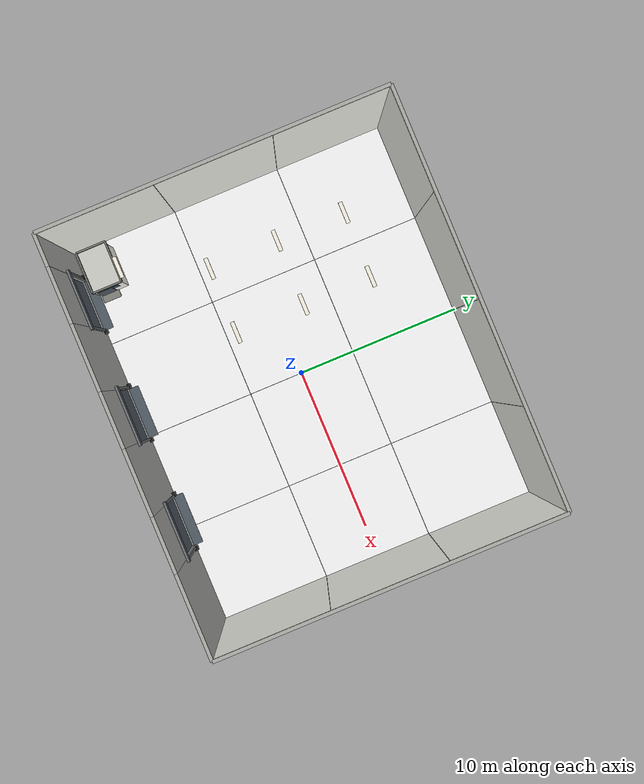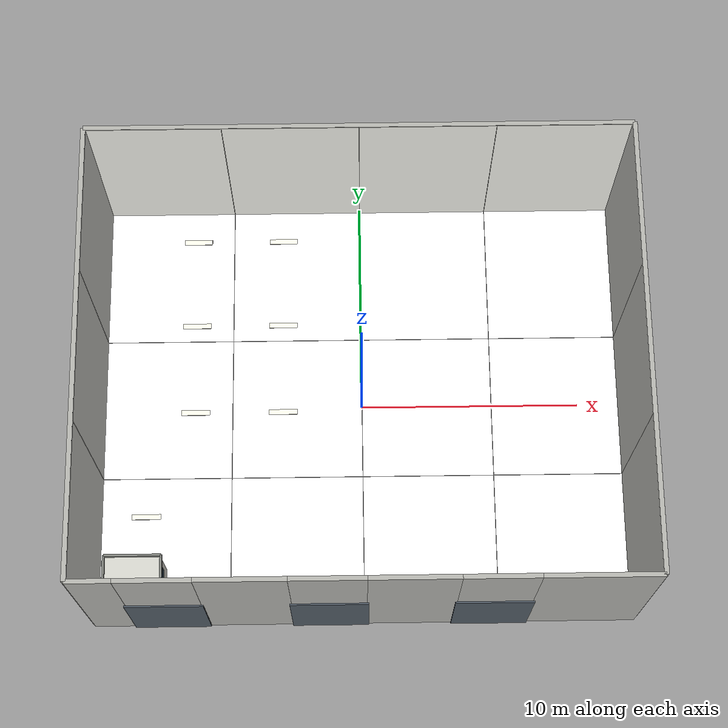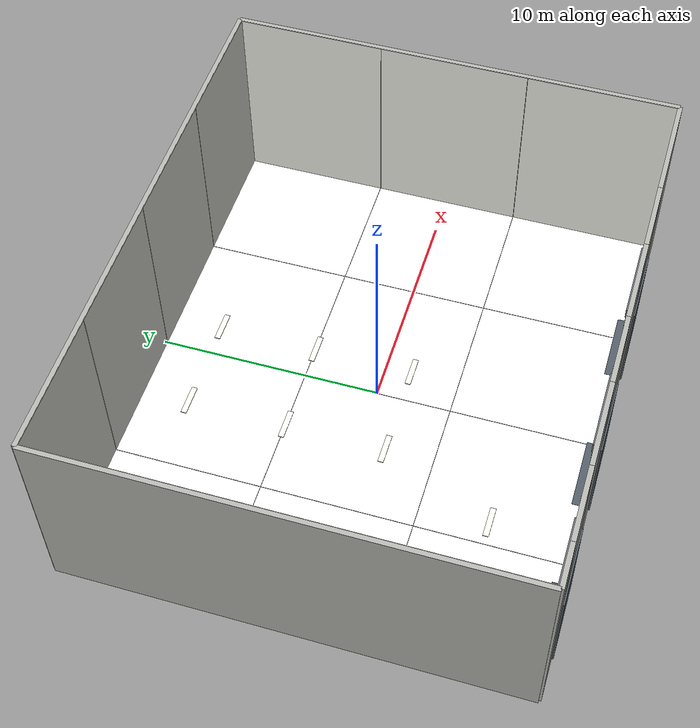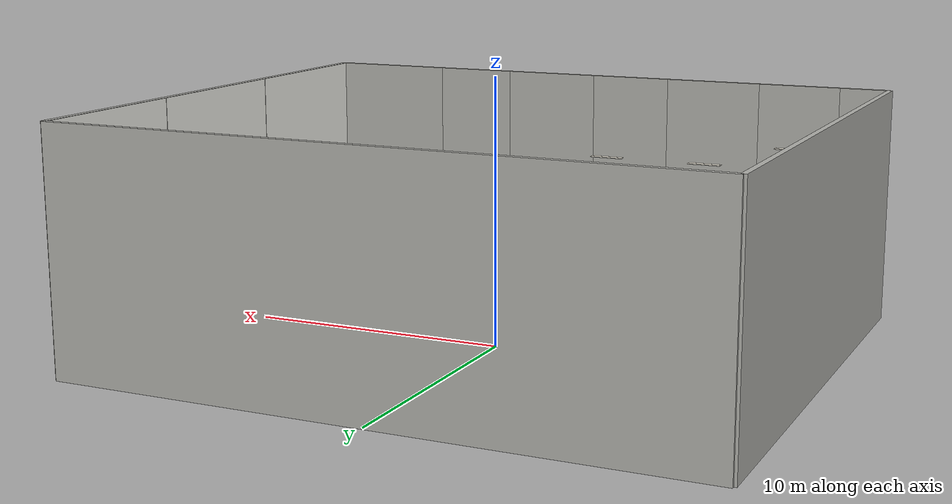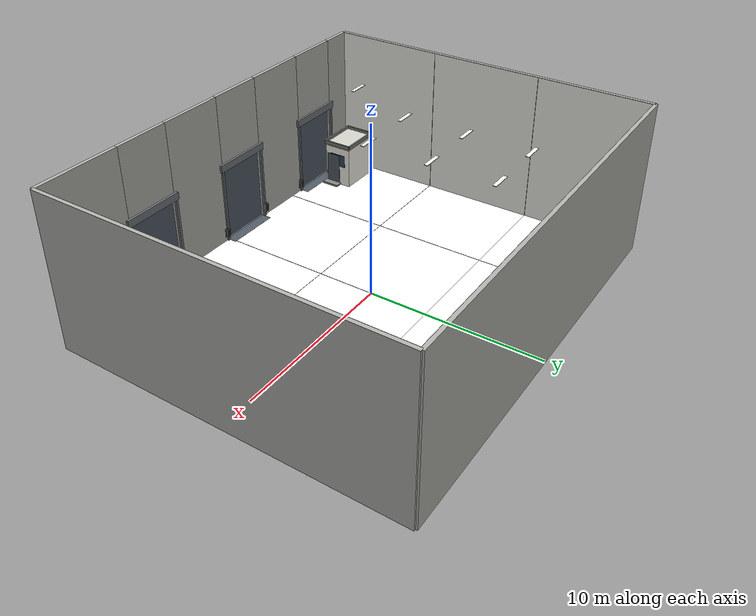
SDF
<sdf version="1.8">
 <world name="warehouse_v2">
  <model name="lamp_glow_0">
   <static>true</static>
   <pose>-7.05 -2.40 6.97 0 0 0</pose>
   <link name="link">
    <visual name="visual">
     <geometry><box><size>1.20 0.22 0.03</size></box></geometry>
     <material>
      <ambient>1 0.98 0.92 1</ambient>
      <diffuse>1 0.98 0.92 1</diffuse>
      <specular>0.2 0.2 0.2 1</specular>
      <emissive>1 0.97 0.90 1</emissive>
     </material>
     <cast_shadows>false</cast_shadows>
    </visual>
   </link>
  </model>
  <model name="lamp_glow_1">
   <static>true</static>
   <pose>-7.05 1.50 6.97 0 0 0</pose>
   <link name="link">
    <visual name="visual">
     <geometry><box><size>1.20 0.22 0.03</size></box></geometry>
     <material>
      <ambient>1 0.98 0.92 1</ambient>
      <diffuse>1 0.98 0.92 1</diffuse>
      <specular>0.2 0.2 0.2 1</specular>
      <emissive>1 0.97 0.90 1</emissive>
     </material>
     <cast_shadows>false</cast_shadows>
    </visual>
   </link>
  </model>
  <model name="lamp_glow_2">
   <static>true</static>
   <pose>-7.05 5.40 6.97 0 0 0</pose>
   <link name="link">
    <visual name="visual">
     <geometry><box><size>1.20 0.22 0.03</size></box></geometry>
     <material>
      <ambient>1 0.98 0.92 1</ambient>
      <diffuse>1 0.98 0.92 1</diffuse>
      <specular>0.2 0.2 0.2 1</specular>
      <emissive>1 0.97 0.90 1</emissive>
     </material>
     <cast_shadows>false</cast_shadows>
    </visual>
   </link>
  </model>
  <model name="lamp_glow_3">
   <static>true</static>
   <pose>-3.35 -2.40 6.97 0 0 0</pose>
   <link name="link">
    <visual name="visual">
     <geometry><box><size>1.20 0.22 0.03</size></box></geometry>
     <material>
      <ambient>1 0.98 0.92 1</ambient>
      <diffuse>1 0.98 0.92 1</diffuse>
      <specular>0.2 0.2 0.2 1</specular>
      <emissive>1 0.97 0.90 1</emissive>
     </material>
     <cast_shadows>false</cast_shadows>
    </visual>
   </link>
  </model>
  <model name="lamp_glow_4">
   <static>true</static>
   <pose>-3.35 1.50 6.97 0 0 0</pose>
   <link name="link">
    <visual name="visual">
     <geometry><box><size>1.20 0.22 0.03</size></box></geometry>
     <material>
      <ambient>1 0.98 0.92 1</ambient>
      <diffuse>1 0.98 0.92 1</diffuse>
      <specular>0.2 0.2 0.2 1</specular>
      <emissive>1 0.97 0.90 1</emissive>
     </material>
     <cast_shadows>false</cast_shadows>
    </visual>
   </link>
  </model>
  <model name="lamp_glow_5">
   <static>true</static>
   <pose>-3.35 5.40 6.97 0 0 0</pose>
   <link name="link">
    <visual name="visual">
     <geometry><box><size>1.20 0.22 0.03</size></box></geometry>
     <material>
      <ambient>1 0.98 0.92 1</ambient>
      <diffuse>1 0.98 0.92 1</diffuse>
      <specular>0.2 0.2 0.2 1</specular>
      <emissive>1 0.97 0.90 1</emissive>
     </material>
     <cast_shadows>false</cast_shadows>
    </visual>
   </link>
  </model>
  <model name="lamp_glow_14">
   <static>true</static>
   <pose>-9.00 -6.90 6.97 0 0 0</pose>
   <link name="link">
    <visual name="visual">
     <geometry><box><size>1.20 0.22 0.03</size></box></geometry>
     <material>
      <ambient>1 0.98 0.92 1</ambient>
      <diffuse>1 0.98 0.92 1</diffuse>
      <specular>0.2 0.2 0.2 1</specular>
      <emissive>1 0.97 0.90 1</emissive>
     </material>
     <cast_shadows>false</cast_shadows>
    </visual>
   </link>
  </model>
  <model name="ground_plane">
   <static>true</static>
   <link name="link">
    <collision name="collision">
     <geometry><plane><normal>0 0 1</normal><size>24.5 20.5</size></plane></geometry>
    </collision>
   </link>
  </model>
  <model name="warehouse_v2_floor">
   <static>true</static>
   <link name="floor_bay_0_0">
    <pose>-9.000 -6.667 0.005 0 0 0.0000</pose>
    <visual name="visual">
     <geometry><box><size>5.985 6.652 0.010</size></box></geometry>
     <material>
      <ambient>1 1 1 1</ambient>
      <diffuse>1 1 1 1</diffuse>
      <specular>0.08 0.08 0.08 1</specular>
      <pbr>
       <metal>
        <albedo_map>model://warehouse_pbr/materials/textures/concrete_albedo.png</albedo_map>
        <normal_map>model://warehouse_pbr/materials/textures/concrete_normal.png</normal_map>
        <roughness_map>model://warehouse_pbr/materials/textures/concrete_roughness.png</roughness_map>
        <metalness>0.0</metalness>
       </metal>
      </pbr>
     </material>
    </visual>
   </link>
   <link name="floor_bay_0_1">
    <pose>-9.000 0.000 0.005 0 0 0.0000</pose>
    <visual name="visual">
     <geometry><box><size>5.985 6.652 0.010</size></box></geometry>
     <material>
      <ambient>1 1 1 1</ambient>
      <diffuse>1 1 1 1</diffuse>
      <specular>0.08 0.08 0.08 1</specular>
      <pbr>
       <metal>
        <albedo_map>model://warehouse_pbr/materials/textures/concrete_albedo.png</albedo_map>
        <normal_map>model://warehouse_pbr/materials/textures/concrete_normal.png</normal_map>
        <roughness_map>model://warehouse_pbr/materials/textures/concrete_roughness.png</roughness_map>
        <metalness>0.0</metalness>
       </metal>
      </pbr>
     </material>
    </visual>
   </link>
   <link name="floor_bay_0_2">
    <pose>-9.000 6.667 0.005 0 0 0.0000</pose>
    <visual name="visual">
     <geometry><box><size>5.985 6.652 0.010</size></box></geometry>
     <material>
      <ambient>1 1 1 1</ambient>
      <diffuse>1 1 1 1</diffuse>
      <specular>0.08 0.08 0.08 1</specular>
      <pbr>
       <metal>
        <albedo_map>model://warehouse_pbr/materials/textures/concrete_albedo.png</albedo_map>
        <normal_map>model://warehouse_pbr/materials/textures/concrete_normal.png</normal_map>
        <roughness_map>model://warehouse_pbr/materials/textures/concrete_roughness.png</roughness_map>
        <metalness>0.0</metalness>
       </metal>
      </pbr>
     </material>
    </visual>
   </link>
   <link name="floor_bay_1_0">
    <pose>-3.000 -6.667 0.005 0 0 0.0000</pose>
    <visual name="visual">
     <geometry><box><size>5.985 6.652 0.010</size></box></geometry>
     <material>
      <ambient>1 1 1 1</ambient>
      <diffuse>1 1 1 1</diffuse>
      <specular>0.08 0.08 0.08 1</specular>
      <pbr>
       <metal>
        <albedo_map>model://warehouse_pbr/materials/textures/concrete_albedo.png</albedo_map>
        <normal_map>model://warehouse_pbr/materials/textures/concrete_normal.png</normal_map>
        <roughness_map>model://warehouse_pbr/materials/textures/concrete_roughness.png</roughness_map>
        <metalness>0.0</metalness>
       </metal>
      </pbr>
     </material>
    </visual>
   </link>
   <link name="floor_bay_1_1">
    <pose>-3.000 0.000 0.005 0 0 0.0000</pose>
    <visual name="visual">
     <geometry><box><size>5.985 6.652 0.010</size></box></geometry>
     <material>
      <ambient>1 1 1 1</ambient>
      <diffuse>1 1 1 1</diffuse>
      <specular>0.08 0.08 0.08 1</specular>
      <pbr>
       <metal>
        <albedo_map>model://warehouse_pbr/materials/textures/concrete_albedo.png</albedo_map>
        <normal_map>model://warehouse_pbr/materials/textures/concrete_normal.png</normal_map>
        <roughness_map>model://warehouse_pbr/materials/textures/concrete_roughness.png</roughness_map>
        <metalness>0.0</metalness>
       </metal>
      </pbr>
     </material>
    </visual>
   </link>
   <link name="floor_bay_1_2">
    <pose>-3.000 6.667 0.005 0 0 0.0000</pose>
    <visual name="visual">
     <geometry><box><size>5.985 6.652 0.010</size></box></geometry>
     <material>
      <ambient>1 1 1 1</ambient>
      <diffuse>1 1 1 1</diffuse>
      <specular>0.08 0.08 0.08 1</specular>
      <pbr>
       <metal>
        <albedo_map>model://warehouse_pbr/materials/textures/concrete_albedo.png</albedo_map>
        <normal_map>model://warehouse_pbr/materials/textures/concrete_normal.png</normal_map>
        <roughness_map>model://warehouse_pbr/materials/textures/concrete_roughness.png</roughness_map>
        <metalness>0.0</metalness>
       </metal>
      </pbr>
     </material>
    </visual>
   </link>
   <link name="floor_bay_2_0">
    <pose>3.000 -6.667 0.005 0 0 0.0000</pose>
    <visual name="visual">
     <geometry><box><size>5.985 6.652 0.010</size></box></geometry>
     <material>
      <ambient>1 1 1 1</ambient>
      <diffuse>1 1 1 1</diffuse>
      <specular>0.08 0.08 0.08 1</specular>
      <pbr>
       <metal>
        <albedo_map>model://warehouse_pbr/materials/textures/concrete_albedo.png</albedo_map>
        <normal_map>model://warehouse_pbr/materials/textures/concrete_normal.png</normal_map>
        <roughness_map>model://warehouse_pbr/materials/textures/concrete_roughness.png</roughness_map>
        <metalness>0.0</metalness>
       </metal>
      </pbr>
     </material>
    </visual>
   </link>
   <link name="floor_bay_2_1">
    <pose>3.000 0.000 0.005 0 0 0.0000</pose>
    <visual name="visual">
     <geometry><box><size>5.985 6.652 0.010</size></box></geometry>
     <material>
      <ambient>1 1 1 1</ambient>
      <diffuse>1 1 1 1</diffuse>
      <specular>0.08 0.08 0.08 1</specular>
      <pbr>
       <metal>
        <albedo_map>model://warehouse_pbr/materials/textures/concrete_albedo.png</albedo_map>
        <normal_map>model://warehouse_pbr/materials/textures/concrete_normal.png</normal_map>
        <roughness_map>model://warehouse_pbr/materials/textures/concrete_roughness.png</roughness_map>
        <metalness>0.0</metalness>
       </metal>
      </pbr>
     </material>
    </visual>
   </link>
   <link name="floor_bay_2_2">
    <pose>3.000 6.667 0.005 0 0 0.0000</pose>
    <visual name="visual">
     <geometry><box><size>5.985 6.652 0.010</size></box></geometry>
     <material>
      <ambient>1 1 1 1</ambient>
      <diffuse>1 1 1 1</diffuse>
      <specular>0.08 0.08 0.08 1</specular>
      <pbr>
       <metal>
        <albedo_map>model://warehouse_pbr/materials/textures/concrete_albedo.png</albedo_map>
        <normal_map>model://warehouse_pbr/materials/textures/concrete_normal.png</normal_map>
        <roughness_map>model://warehouse_pbr/materials/textures/concrete_roughness.png</roughness_map>
        <metalness>0.0</metalness>
       </metal>
      </pbr>
     </material>
    </visual>
   </link>
   <link name="floor_bay_3_0">
    <pose>9.000 -6.667 0.005 0 0 0.0000</pose>
    <visual name="visual">
     <geometry><box><size>5.985 6.652 0.010</size></box></geometry>
     <material>
      <ambient>1 1 1 1</ambient>
      <diffuse>1 1 1 1</diffuse>
      <specular>0.08 0.08 0.08 1</specular>
      <pbr>
       <metal>
        <albedo_map>model://warehouse_pbr/materials/textures/concrete_albedo.png</albedo_map>
        <normal_map>model://warehouse_pbr/materials/textures/concrete_normal.png</normal_map>
        <roughness_map>model://warehouse_pbr/materials/textures/concrete_roughness.png</roughness_map>
        <metalness>0.0</metalness>
       </metal>
      </pbr>
     </material>
    </visual>
   </link>
   <link name="floor_bay_3_1">
    <pose>9.000 0.000 0.005 0 0 0.0000</pose>
    <visual name="visual">
     <geometry><box><size>5.985 6.652 0.010</size></box></geometry>
     <material>
      <ambient>1 1 1 1</ambient>
      <diffuse>1 1 1 1</diffuse>
      <specular>0.08 0.08 0.08 1</specular>
      <pbr>
       <metal>
        <albedo_map>model://warehouse_pbr/materials/textures/concrete_albedo.png</albedo_map>
        <normal_map>model://warehouse_pbr/materials/textures/concrete_normal.png</normal_map>
        <roughness_map>model://warehouse_pbr/materials/textures/concrete_roughness.png</roughness_map>
        <metalness>0.0</metalness>
       </metal>
      </pbr>
     </material>
    </visual>
   </link>
   <link name="floor_bay_3_2">
    <pose>9.000 6.667 0.005 0 0 0.0000</pose>
    <visual name="visual">
     <geometry><box><size>5.985 6.652 0.010</size></box></geometry>
     <material>
      <ambient>1 1 1 1</ambient>
      <diffuse>1 1 1 1</diffuse>
      <specular>0.08 0.08 0.08 1</specular>
      <pbr>
       <metal>
        <albedo_map>model://warehouse_pbr/materials/textures/concrete_albedo.png</albedo_map>
        <normal_map>model://warehouse_pbr/materials/textures/concrete_normal.png</normal_map>
        <roughness_map>model://warehouse_pbr/materials/textures/concrete_roughness.png</roughness_map>
        <metalness>0.0</metalness>
       </metal>
      </pbr>
     </material>
    </visual>
   </link>
  </model>
  <model name="warehouse_v2_wall_lining">
   <static>true</static>
   <link name="panel_n_0">
    <pose>-9.000 9.890 4.500 0 0 0.0000</pose>
    <visual name="visual">
     <geometry><box><size>5.980 0.020 8.980</size></box></geometry>
     <material>
      <ambient>0.97 0.97 0.94 1</ambient>
      <diffuse>0.97 0.97 0.94 1</diffuse>
      <specular>0.08 0.08 0.08 1</specular>
      <pbr>
       <metal>
        <albedo_map>model://warehouse_pbr/materials/textures/concrete_albedo.png</albedo_map>
        <normal_map>model://warehouse_pbr/materials/textures/concrete_normal.png</normal_map>
        <roughness_map>model://warehouse_pbr/materials/textures/concrete_roughness.png</roughness_map>
        <metalness>0.0</metalness>
       </metal>
      </pbr>
     </material>
    </visual>
   </link>
   <link name="panel_n_1">
    <pose>-3.000 9.890 4.500 0 0 0.0000</pose>
    <visual name="visual">
     <geometry><box><size>5.980 0.020 8.980</size></box></geometry>
     <material>
      <ambient>0.97 0.97 0.94 1</ambient>
      <diffuse>0.97 0.97 0.94 1</diffuse>
      <specular>0.08 0.08 0.08 1</specular>
      <pbr>
       <metal>
        <albedo_map>model://warehouse_pbr/materials/textures/concrete_albedo.png</albedo_map>
        <normal_map>model://warehouse_pbr/materials/textures/concrete_normal.png</normal_map>
        <roughness_map>model://warehouse_pbr/materials/textures/concrete_roughness.png</roughness_map>
        <metalness>0.0</metalness>
       </metal>
      </pbr>
     </material>
    </visual>
   </link>
   <link name="panel_n_2">
    <pose>3.000 9.890 4.500 0 0 0.0000</pose>
    <visual name="visual">
     <geometry><box><size>5.980 0.020 8.980</size></box></geometry>
     <material>
      <ambient>0.97 0.97 0.94 1</ambient>
      <diffuse>0.97 0.97 0.94 1</diffuse>
      <specular>0.08 0.08 0.08 1</specular>
      <pbr>
       <metal>
        <albedo_map>model://warehouse_pbr/materials/textures/concrete_albedo.png</albedo_map>
        <normal_map>model://warehouse_pbr/materials/textures/concrete_normal.png</normal_map>
        <roughness_map>model://warehouse_pbr/materials/textures/concrete_roughness.png</roughness_map>
        <metalness>0.0</metalness>
       </metal>
      </pbr>
     </material>
    </visual>
   </link>
   <link name="panel_n_3">
    <pose>9.000 9.890 4.500 0 0 0.0000</pose>
    <visual name="visual">
     <geometry><box><size>5.980 0.020 8.980</size></box></geometry>
     <material>
      <ambient>0.97 0.97 0.94 1</ambient>
      <diffuse>0.97 0.97 0.94 1</diffuse>
      <specular>0.08 0.08 0.08 1</specular>
      <pbr>
       <metal>
        <albedo_map>model://warehouse_pbr/materials/textures/concrete_albedo.png</albedo_map>
        <normal_map>model://warehouse_pbr/materials/textures/concrete_normal.png</normal_map>
        <roughness_map>model://warehouse_pbr/materials/textures/concrete_roughness.png</roughness_map>
        <metalness>0.0</metalness>
       </metal>
      </pbr>
     </material>
    </visual>
   </link>
   <link name="panel_w_0">
    <pose>-11.890 -6.667 4.500 0 0 0.0000</pose>
    <visual name="visual">
     <geometry><box><size>0.020 6.647 8.980</size></box></geometry>
     <material>
      <ambient>0.97 0.97 0.94 1</ambient>
      <diffuse>0.97 0.97 0.94 1</diffuse>
      <specular>0.08 0.08 0.08 1</specular>
      <pbr>
       <metal>
        <albedo_map>model://warehouse_pbr/materials/textures/concrete_albedo.png</albedo_map>
        <normal_map>model://warehouse_pbr/materials/textures/concrete_normal.png</normal_map>
        <roughness_map>model://warehouse_pbr/materials/textures/concrete_roughness.png</roughness_map>
        <metalness>0.0</metalness>
       </metal>
      </pbr>
     </material>
    </visual>
   </link>
   <link name="panel_e_0">
    <pose>11.890 -6.667 4.500 0 0 0.0000</pose>
    <visual name="visual">
     <geometry><box><size>0.020 6.647 8.980</size></box></geometry>
     <material>
      <ambient>0.97 0.97 0.94 1</ambient>
      <diffuse>0.97 0.97 0.94 1</diffuse>
      <specular>0.08 0.08 0.08 1</specular>
      <pbr>
       <metal>
        <albedo_map>model://warehouse_pbr/materials/textures/concrete_albedo.png</albedo_map>
        <normal_map>model://warehouse_pbr/materials/textures/concrete_normal.png</normal_map>
        <roughness_map>model://warehouse_pbr/materials/textures/concrete_roughness.png</roughness_map>
        <metalness>0.0</metalness>
       </metal>
      </pbr>
     </material>
    </visual>
   </link>
   <link name="panel_w_1">
    <pose>-11.890 0.000 4.500 0 0 0.0000</pose>
    <visual name="visual">
     <geometry><box><size>0.020 6.647 8.980</size></box></geometry>
     <material>
      <ambient>0.97 0.97 0.94 1</ambient>
      <diffuse>0.97 0.97 0.94 1</diffuse>
      <specular>0.08 0.08 0.08 1</specular>
      <pbr>
       <metal>
        <albedo_map>model://warehouse_pbr/materials/textures/concrete_albedo.png</albedo_map>
        <normal_map>model://warehouse_pbr/materials/textures/concrete_normal.png</normal_map>
        <roughness_map>model://warehouse_pbr/materials/textures/concrete_roughness.png</roughness_map>
        <metalness>0.0</metalness>
       </metal>
      </pbr>
     </material>
    </visual>
   </link>
   <link name="panel_e_1">
    <pose>11.890 0.000 4.500 0 0 0.0000</pose>
    <visual name="visual">
     <geometry><box><size>0.020 6.647 8.980</size></box></geometry>
     <material>
      <ambient>0.97 0.97 0.94 1</ambient>
      <diffuse>0.97 0.97 0.94 1</diffuse>
      <specular>0.08 0.08 0.08 1</specular>
      <pbr>
       <metal>
        <albedo_map>model://warehouse_pbr/materials/textures/concrete_albedo.png</albedo_map>
        <normal_map>model://warehouse_pbr/materials/textures/concrete_normal.png</normal_map>
        <roughness_map>model://warehouse_pbr/materials/textures/concrete_roughness.png</roughness_map>
        <metalness>0.0</metalness>
       </metal>
      </pbr>
     </material>
    </visual>
   </link>
   <link name="panel_w_2">
    <pose>-11.890 6.667 4.500 0 0 0.0000</pose>
    <visual name="visual">
     <geometry><box><size>0.020 6.647 8.980</size></box></geometry>
     <material>
      <ambient>0.97 0.97 0.94 1</ambient>
      <diffuse>0.97 0.97 0.94 1</diffuse>
      <specular>0.08 0.08 0.08 1</specular>
      <pbr>
       <metal>
        <albedo_map>model://warehouse_pbr/materials/textures/concrete_albedo.png</albedo_map>
        <normal_map>model://warehouse_pbr/materials/textures/concrete_normal.png</normal_map>
        <roughness_map>model://warehouse_pbr/materials/textures/concrete_roughness.png</roughness_map>
        <metalness>0.0</metalness>
       </metal>
      </pbr>
     </material>
    </visual>
   </link>
   <link name="panel_e_2">
    <pose>11.890 6.667 4.500 0 0 0.0000</pose>
    <visual name="visual">
     <geometry><box><size>0.020 6.647 8.980</size></box></geometry>
     <material>
      <ambient>0.97 0.97 0.94 1</ambient>
      <diffuse>0.97 0.97 0.94 1</diffuse>
      <specular>0.08 0.08 0.08 1</specular>
      <pbr>
       <metal>
        <albedo_map>model://warehouse_pbr/materials/textures/concrete_albedo.png</albedo_map>
        <normal_map>model://warehouse_pbr/materials/textures/concrete_normal.png</normal_map>
        <roughness_map>model://warehouse_pbr/materials/textures/concrete_roughness.png</roughness_map>
        <metalness>0.0</metalness>
       </metal>
      </pbr>
     </material>
    </visual>
   </link>
  </model>
  <model name="warehouse_shell">
   <static>true</static>
   <link name="wall_east">
    <pose>12.000 0.000 4.500 0 0 0.0000</pose>
    <collision name="collision"><geometry><box><size>0.200 20.000 9.000</size></box></geometry></collision>
    <sensor name="contact" type="contact">
     <contact><collision>collision</collision></contact>
     <update_rate>20</update_rate>
    </sensor>
    <visual name="visual">
     <geometry><box><size>0.200 20.000 9.000</size></box></geometry>
     <material>
      <ambient>0.70 0.70 0.68 1</ambient>
      <diffuse>0.70 0.70 0.68 1</diffuse>
      <specular>0.100 0.100 0.100 1</specular>
      <pbr><metal><metalness>0.00</metalness><roughness>0.80</roughness></metal></pbr>
     </material>
    </visual>
   </link>
   <link name="wall_west">
    <pose>-12.000 0.000 4.500 0 0 0.0000</pose>
    <collision name="collision"><geometry><box><size>0.200 20.000 9.000</size></box></geometry></collision>
    <sensor name="contact" type="contact">
     <contact><collision>collision</collision></contact>
     <update_rate>20</update_rate>
    </sensor>
    <visual name="visual">
     <geometry><box><size>0.200 20.000 9.000</size></box></geometry>
     <material>
      <ambient>0.70 0.70 0.68 1</ambient>
      <diffuse>0.70 0.70 0.68 1</diffuse>
      <specular>0.100 0.100 0.100 1</specular>
      <pbr><metal><metalness>0.00</metalness><roughness>0.80</roughness></metal></pbr>
     </material>
    </visual>
   </link>
   <link name="wall_north">
    <pose>0.000 10.000 4.500 0 0 0.0000</pose>
    <collision name="collision"><geometry><box><size>24.000 0.200 9.000</size></box></geometry></collision>
    <sensor name="contact" type="contact">
     <contact><collision>collision</collision></contact>
     <update_rate>20</update_rate>
    </sensor>
    <visual name="visual">
     <geometry><box><size>24.000 0.200 9.000</size></box></geometry>
     <material>
      <ambient>0.70 0.70 0.68 1</ambient>
      <diffuse>0.70 0.70 0.68 1</diffuse>
      <specular>0.100 0.100 0.100 1</specular>
      <pbr><metal><metalness>0.00</metalness><roughness>0.80</roughness></metal></pbr>
     </material>
    </visual>
   </link>
   <link name="wall_south_0">
    <pose>-11.050 -10.000 4.500 0 0 0.0000</pose>
    <collision name="collision"><geometry><box><size>1.900 0.200 9.000</size></box></geometry></collision>
    <sensor name="contact" type="contact">
     <contact><collision>collision</collision></contact>
     <update_rate>20</update_rate>
    </sensor>
    <visual name="visual">
     <geometry><box><size>1.900 0.200 9.000</size></box></geometry>
     <material>
      <ambient>0.70 0.70 0.68 1</ambient>
      <diffuse>0.70 0.70 0.68 1</diffuse>
      <specular>0.100 0.100 0.100 1</specular>
      <pbr><metal><metalness>0.00</metalness><roughness>0.80</roughness></metal></pbr>
     </material>
    </visual>
   </link>
   <link name="wall_south_1">
    <pose>-5.000 -10.000 4.500 0 0 0.0000</pose>
    <collision name="collision"><geometry><box><size>3.800 0.200 9.000</size></box></geometry></collision>
    <sensor name="contact" type="contact">
     <contact><collision>collision</collision></contact>
     <update_rate>20</update_rate>
    </sensor>
    <visual name="visual">
     <geometry><box><size>3.800 0.200 9.000</size></box></geometry>
     <material>
      <ambient>0.70 0.70 0.68 1</ambient>
      <diffuse>0.70 0.70 0.68 1</diffuse>
      <specular>0.100 0.100 0.100 1</specular>
      <pbr><metal><metalness>0.00</metalness><roughness>0.80</roughness></metal></pbr>
     </material>
    </visual>
   </link>
   <link name="wall_south_2">
    <pose>2.000 -10.000 4.500 0 0 0.0000</pose>
    <collision name="collision"><geometry><box><size>3.800 0.200 9.000</size></box></geometry></collision>
    <sensor name="contact" type="contact">
     <contact><collision>collision</collision></contact>
     <update_rate>20</update_rate>
    </sensor>
    <visual name="visual">
     <geometry><box><size>3.800 0.200 9.000</size></box></geometry>
     <material>
      <ambient>0.70 0.70 0.68 1</ambient>
      <diffuse>0.70 0.70 0.68 1</diffuse>
      <specular>0.100 0.100 0.100 1</specular>
      <pbr><metal><metalness>0.00</metalness><roughness>0.80</roughness></metal></pbr>
     </material>
    </visual>
   </link>
   <link name="wall_south_3">
    <pose>9.550 -10.000 4.500 0 0 0.0000</pose>
    <collision name="collision"><geometry><box><size>4.900 0.200 9.000</size></box></geometry></collision>
    <sensor name="contact" type="contact">
     <contact><collision>collision</collision></contact>
     <update_rate>20</update_rate>
    </sensor>
    <visual name="visual">
     <geometry><box><size>4.900 0.200 9.000</size></box></geometry>
     <material>
      <ambient>0.70 0.70 0.68 1</ambient>
      <diffuse>0.70 0.70 0.68 1</diffuse>
      <specular>0.100 0.100 0.100 1</specular>
      <pbr><metal><metalness>0.00</metalness><roughness>0.80</roughness></metal></pbr>
     </material>
    </visual>
   </link>
   <link name="door_head_0">
    <pose>-8.500 -10.000 6.750 0 0 0.0000</pose>
    <collision name="collision"><geometry><box><size>3.200 0.200 4.500</size></box></geometry></collision>
    <sensor name="contact" type="contact">
     <contact><collision>collision</collision></contact>
     <update_rate>20</update_rate>
    </sensor>
    <visual name="visual">
     <geometry><box><size>3.200 0.200 4.500</size></box></geometry>
     <material>
      <ambient>0.70 0.70 0.68 1</ambient>
      <diffuse>0.70 0.70 0.68 1</diffuse>
      <specular>0.100 0.100 0.100 1</specular>
      <pbr><metal><metalness>0.00</metalness><roughness>0.80</roughness></metal></pbr>
     </material>
    </visual>
   </link>
   <link name="door_frame_0">
    <pose>-8.500 -10.130 2.250 0 0 0.0000</pose>
    <visual name="visual">
     <geometry><box><size>3.360 0.080 4.500</size></box></geometry>
     <material>
      <ambient>0.32 0.36 0.40 1</ambient>
      <diffuse>0.32 0.36 0.40 1</diffuse>
      <specular>0.100 0.100 0.100 1</specular>
      <pbr><metal><metalness>0.00</metalness><roughness>0.80</roughness></metal></pbr>
     </material>
    </visual>
   </link>
   <link name="door_sill_0">
    <pose>-8.500 -9.700 0.008 0 0 0.0000</pose>
    <visual name="visual">
     <geometry><box><size>3.200 0.600 0.014</size></box></geometry>
     <material>
      <ambient>0.32 0.36 0.40 1</ambient>
      <diffuse>0.32 0.36 0.40 1</diffuse>
      <specular>0.325 0.325 0.325 1</specular>
      <pbr><metal><metalness>0.65</metalness><roughness>0.35</roughness></metal></pbr>
     </material>
    </visual>
   </link>
   <link name="door_bumper_0l">
    <pose>-10.240 -9.840 0.550 0 0 0.0000</pose>
    <visual name="visual">
     <geometry><box><size>0.280 0.220 0.500</size></box></geometry>
     <material>
      <ambient>0.12 0.12 0.13 1</ambient>
      <diffuse>0.12 0.12 0.13 1</diffuse>
      <specular>0.225 0.225 0.225 1</specular>
      <pbr><metal><metalness>0.00</metalness><roughness>0.55</roughness></metal></pbr>
     </material>
    </visual>
   </link>
   <link name="door_guide_0l">
    <pose>-10.160 -9.860 2.250 0 0 0.0000</pose>
    <visual name="visual">
     <geometry><box><size>0.140 0.140 4.500</size></box></geometry>
     <material>
      <ambient>0.44 0.46 0.48 1</ambient>
      <diffuse>0.44 0.46 0.48 1</diffuse>
      <specular>0.325 0.325 0.325 1</specular>
      <pbr><metal><metalness>0.65</metalness><roughness>0.35</roughness></metal></pbr>
     </material>
    </visual>
   </link>
   <link name="door_bumper_0r">
    <pose>-6.760 -9.840 0.550 0 0 0.0000</pose>
    <visual name="visual">
     <geometry><box><size>0.280 0.220 0.500</size></box></geometry>
     <material>
      <ambient>0.12 0.12 0.13 1</ambient>
      <diffuse>0.12 0.12 0.13 1</diffuse>
      <specular>0.225 0.225 0.225 1</specular>
      <pbr><metal><metalness>0.00</metalness><roughness>0.55</roughness></metal></pbr>
     </material>
    </visual>
   </link>
   <link name="door_guide_0r">
    <pose>-6.840 -9.860 2.250 0 0 0.0000</pose>
    <visual name="visual">
     <geometry><box><size>0.140 0.140 4.500</size></box></geometry>
     <material>
      <ambient>0.44 0.46 0.48 1</ambient>
      <diffuse>0.44 0.46 0.48 1</diffuse>
      <specular>0.325 0.325 0.325 1</specular>
      <pbr><metal><metalness>0.65</metalness><roughness>0.35</roughness></metal></pbr>
     </material>
    </visual>
   </link>
   <link name="door_lintel_0">
    <pose>-8.500 -9.860 4.720 0 0 0.0000</pose>
    <visual name="visual">
     <geometry><box><size>3.600 0.200 0.440</size></box></geometry>
     <material>
      <ambient>0.44 0.46 0.48 1</ambient>
      <diffuse>0.44 0.46 0.48 1</diffuse>
      <specular>0.325 0.325 0.325 1</specular>
      <pbr><metal><metalness>0.65</metalness><roughness>0.35</roughness></metal></pbr>
     </material>
    </visual>
   </link>
   <link name="door_head_1">
    <pose>-1.500 -10.000 6.750 0 0 0.0000</pose>
    <collision name="collision"><geometry><box><size>3.200 0.200 4.500</size></box></geometry></collision>
    <sensor name="contact" type="contact">
     <contact><collision>collision</collision></contact>
     <update_rate>20</update_rate>
    </sensor>
    <visual name="visual">
     <geometry><box><size>3.200 0.200 4.500</size></box></geometry>
     <material>
      <ambient>0.70 0.70 0.68 1</ambient>
      <diffuse>0.70 0.70 0.68 1</diffuse>
      <specular>0.100 0.100 0.100 1</specular>
      <pbr><metal><metalness>0.00</metalness><roughness>0.80</roughness></metal></pbr>
     </material>
    </visual>
   </link>
   <link name="door_frame_1">
    <pose>-1.500 -10.130 2.250 0 0 0.0000</pose>
    <visual name="visual">
     <geometry><box><size>3.360 0.080 4.500</size></box></geometry>
     <material>
      <ambient>0.32 0.36 0.40 1</ambient>
      <diffuse>0.32 0.36 0.40 1</diffuse>
      <specular>0.100 0.100 0.100 1</specular>
      <pbr><metal><metalness>0.00</metalness><roughness>0.80</roughness></metal></pbr>
     </material>
    </visual>
   </link>
   <link name="door_sill_1">
    <pose>-1.500 -9.700 0.008 0 0 0.0000</pose>
    <visual name="visual">
     <geometry><box><size>3.200 0.600 0.014</size></box></geometry>
     <material>
      <ambient>0.32 0.36 0.40 1</ambient>
      <diffuse>0.32 0.36 0.40 1</diffuse>
      <specular>0.325 0.325 0.325 1</specular>
      <pbr><metal><metalness>0.65</metalness><roughness>0.35</roughness></metal></pbr>
     </material>
    </visual>
   </link>
   <link name="door_bumper_1l">
    <pose>-3.240 -9.840 0.550 0 0 0.0000</pose>
    <visual name="visual">
     <geometry><box><size>0.280 0.220 0.500</size></box></geometry>
     <material>
      <ambient>0.12 0.12 0.13 1</ambient>
      <diffuse>0.12 0.12 0.13 1</diffuse>
      <specular>0.225 0.225 0.225 1</specular>
      <pbr><metal><metalness>0.00</metalness><roughness>0.55</roughness></metal></pbr>
     </material>
    </visual>
   </link>
   <link name="door_guide_1l">
    <pose>-3.160 -9.860 2.250 0 0 0.0000</pose>
    <visual name="visual">
     <geometry><box><size>0.140 0.140 4.500</size></box></geometry>
     <material>
      <ambient>0.44 0.46 0.48 1</ambient>
      <diffuse>0.44 0.46 0.48 1</diffuse>
      <specular>0.325 0.325 0.325 1</specular>
      <pbr><metal><metalness>0.65</metalness><roughness>0.35</roughness></metal></pbr>
     </material>
    </visual>
   </link>
   <link name="door_bumper_1r">
    <pose>0.240 -9.840 0.550 0 0 0.0000</pose>
    <visual name="visual">
     <geometry><box><size>0.280 0.220 0.500</size></box></geometry>
     <material>
      <ambient>0.12 0.12 0.13 1</ambient>
      <diffuse>0.12 0.12 0.13 1</diffuse>
      <specular>0.225 0.225 0.225 1</specular>
      <pbr><metal><metalness>0.00</metalness><roughness>0.55</roughness></metal></pbr>
     </material>
    </visual>
   </link>
   <link name="door_guide_1r">
    <pose>0.160 -9.860 2.250 0 0 0.0000</pose>
    <visual name="visual">
     <geometry><box><size>0.140 0.140 4.500</size></box></geometry>
     <material>
      <ambient>0.44 0.46 0.48 1</ambient>
      <diffuse>0.44 0.46 0.48 1</diffuse>
      <specular>0.325 0.325 0.325 1</specular>
      <pbr><metal><metalness>0.65</metalness><roughness>0.35</roughness></metal></pbr>
     </material>
    </visual>
   </link>
   <link name="door_lintel_1">
    <pose>-1.500 -9.860 4.720 0 0 0.0000</pose>
    <visual name="visual">
     <geometry><box><size>3.600 0.200 0.440</size></box></geometry>
     <material>
      <ambient>0.44 0.46 0.48 1</ambient>
      <diffuse>0.44 0.46 0.48 1</diffuse>
      <specular>0.325 0.325 0.325 1</specular>
      <pbr><metal><metalness>0.65</metalness><roughness>0.35</roughness></metal></pbr>
     </material>
    </visual>
   </link>
   <link name="door_head_2">
    <pose>5.500 -10.000 6.750 0 0 0.0000</pose>
    <collision name="collision"><geometry><box><size>3.200 0.200 4.500</size></box></geometry></collision>
    <sensor name="contact" type="contact">
     <contact><collision>collision</collision></contact>
     <update_rate>20</update_rate>
    </sensor>
    <visual name="visual">
     <geometry><box><size>3.200 0.200 4.500</size></box></geometry>
     <material>
      <ambient>0.70 0.70 0.68 1</ambient>
      <diffuse>0.70 0.70 0.68 1</diffuse>
      <specular>0.100 0.100 0.100 1</specular>
      <pbr><metal><metalness>0.00</metalness><roughness>0.80</roughness></metal></pbr>
     </material>
    </visual>
   </link>
   <link name="door_frame_2">
    <pose>5.500 -10.130 2.250 0 0 0.0000</pose>
    <visual name="visual">
     <geometry><box><size>3.360 0.080 4.500</size></box></geometry>
     <material>
      <ambient>0.32 0.36 0.40 1</ambient>
      <diffuse>0.32 0.36 0.40 1</diffuse>
      <specular>0.100 0.100 0.100 1</specular>
      <pbr><metal><metalness>0.00</metalness><roughness>0.80</roughness></metal></pbr>
     </material>
    </visual>
   </link>
   <link name="door_sill_2">
    <pose>5.500 -9.700 0.008 0 0 0.0000</pose>
    <visual name="visual">
     <geometry><box><size>3.200 0.600 0.014</size></box></geometry>
     <material>
      <ambient>0.32 0.36 0.40 1</ambient>
      <diffuse>0.32 0.36 0.40 1</diffuse>
      <specular>0.325 0.325 0.325 1</specular>
      <pbr><metal><metalness>0.65</metalness><roughness>0.35</roughness></metal></pbr>
     </material>
    </visual>
   </link>
   <link name="door_bumper_2l">
    <pose>3.760 -9.840 0.550 0 0 0.0000</pose>
    <visual name="visual">
     <geometry><box><size>0.280 0.220 0.500</size></box></geometry>
     <material>
      <ambient>0.12 0.12 0.13 1</ambient>
      <diffuse>0.12 0.12 0.13 1</diffuse>
      <specular>0.225 0.225 0.225 1</specular>
      <pbr><metal><metalness>0.00</metalness><roughness>0.55</roughness></metal></pbr>
     </material>
    </visual>
   </link>
   <link name="door_guide_2l">
    <pose>3.840 -9.860 2.250 0 0 0.0000</pose>
    <visual name="visual">
     <geometry><box><size>0.140 0.140 4.500</size></box></geometry>
     <material>
      <ambient>0.44 0.46 0.48 1</ambient>
      <diffuse>0.44 0.46 0.48 1</diffuse>
      <specular>0.325 0.325 0.325 1</specular>
      <pbr><metal><metalness>0.65</metalness><roughness>0.35</roughness></metal></pbr>
     </material>
    </visual>
   </link>
   <link name="door_bumper_2r">
    <pose>7.240 -9.840 0.550 0 0 0.0000</pose>
    <visual name="visual">
     <geometry><box><size>0.280 0.220 0.500</size></box></geometry>
     <material>
      <ambient>0.12 0.12 0.13 1</ambient>
      <diffuse>0.12 0.12 0.13 1</diffuse>
      <specular>0.225 0.225 0.225 1</specular>
      <pbr><metal><metalness>0.00</metalness><roughness>0.55</roughness></metal></pbr>
     </material>
    </visual>
   </link>
   <link name="door_guide_2r">
    <pose>7.160 -9.860 2.250 0 0 0.0000</pose>
    <visual name="visual">
     <geometry><box><size>0.140 0.140 4.500</size></box></geometry>
     <material>
      <ambient>0.44 0.46 0.48 1</ambient>
      <diffuse>0.44 0.46 0.48 1</diffuse>
      <specular>0.325 0.325 0.325 1</specular>
      <pbr><metal><metalness>0.65</metalness><roughness>0.35</roughness></metal></pbr>
     </material>
    </visual>
   </link>
   <link name="door_lintel_2">
    <pose>5.500 -9.860 4.720 0 0 0.0000</pose>
    <visual name="visual">
     <geometry><box><size>3.600 0.200 0.440</size></box></geometry>
     <material>
      <ambient>0.44 0.46 0.48 1</ambient>
      <diffuse>0.44 0.46 0.48 1</diffuse>
      <specular>0.325 0.325 0.325 1</specular>
      <pbr><metal><metalness>0.65</metalness><roughness>0.35</roughness></metal></pbr>
     </material>
    </visual>
   </link>
   <link name="office_body">
    <pose>-10.100 -8.450 1.300 0 0 0.0000</pose>
    <visual name="visual">
     <geometry><box><size>2.440 1.740 2.600</size></box></geometry>
     <material>
      <ambient>1.00 0.99 0.95 1</ambient>
      <diffuse>1.00 0.99 0.95 1</diffuse>
      <specular>0.08 0.08 0.08 1</specular>
      <pbr>
       <metal>
        <albedo_map>model://warehouse_pbr/materials/textures/concrete_albedo.png</albedo_map>
        <normal_map>model://warehouse_pbr/materials/textures/concrete_normal.png</normal_map>
        <roughness_map>model://warehouse_pbr/materials/textures/concrete_roughness.png</roughness_map>
        <metalness>0.0</metalness>
       </metal>
      </pbr>
     </material>
    </visual>
   </link>
   <link name="office_roof">
    <pose>-10.100 -8.450 2.660 0 0 0.0000</pose>
    <visual name="visual">
     <geometry><box><size>2.500 1.800 0.120</size></box></geometry>
     <material>
      <ambient>0.83 0.83 0.80 1</ambient>
      <diffuse>0.83 0.83 0.80 1</diffuse>
      <specular>0.08 0.08 0.08 1</specular>
      <pbr>
       <metal>
        <albedo_map>model://warehouse_pbr/materials/textures/concrete_albedo.png</albedo_map>
        <normal_map>model://warehouse_pbr/materials/textures/concrete_normal.png</normal_map>
        <roughness_map>model://warehouse_pbr/materials/textures/concrete_roughness.png</roughness_map>
        <metalness>0.0</metalness>
       </metal>
      </pbr>
     </material>
    </visual>
   </link>
   <link name="office_parapet_s">
    <pose>-10.100 -9.350 2.800 0 0 0.0000</pose>
    <visual name="visual">
     <geometry><box><size>2.500 0.100 0.200</size></box></geometry>
     <material>
      <ambient>0.50 0.51 0.49 1</ambient>
      <diffuse>0.50 0.51 0.49 1</diffuse>
      <specular>0.225 0.225 0.225 1</specular>
      <pbr><metal><metalness>0.00</metalness><roughness>0.55</roughness></metal></pbr>
     </material>
    </visual>
   </link>
   <link name="office_parapet_n">
    <pose>-10.100 -7.550 2.800 0 0 0.0000</pose>
    <visual name="visual">
     <geometry><box><size>2.500 0.100 0.200</size></box></geometry>
     <material>
      <ambient>0.50 0.51 0.49 1</ambient>
      <diffuse>0.50 0.51 0.49 1</diffuse>
      <specular>0.225 0.225 0.225 1</specular>
      <pbr><metal><metalness>0.00</metalness><roughness>0.55</roughness></metal></pbr>
     </material>
    </visual>
   </link>
   <link name="office_parapet_w">
    <pose>-11.350 -8.450 2.800 0 0 0.0000</pose>
    <visual name="visual">
     <geometry><box><size>0.100 1.800 0.200</size></box></geometry>
     <material>
      <ambient>0.50 0.51 0.49 1</ambient>
      <diffuse>0.50 0.51 0.49 1</diffuse>
      <specular>0.225 0.225 0.225 1</specular>
      <pbr><metal><metalness>0.00</metalness><roughness>0.55</roughness></metal></pbr>
     </material>
    </visual>
   </link>
   <link name="office_parapet_e">
    <pose>-8.850 -8.450 2.800 0 0 0.0000</pose>
    <visual name="visual">
     <geometry><box><size>0.100 1.800 0.200</size></box></geometry>
     <material>
      <ambient>0.50 0.51 0.49 1</ambient>
      <diffuse>0.50 0.51 0.49 1</diffuse>
      <specular>0.225 0.225 0.225 1</specular>
      <pbr><metal><metalness>0.00</metalness><roughness>0.55</roughness></metal></pbr>
     </material>
    </visual>
   </link>
   <link name="office_window">
    <pose>-8.890 -8.450 1.700 0 0 0.0000</pose>
    <visual name="visual">
     <geometry><box><size>0.050 1.079 0.800</size></box></geometry>
     <material>
      <ambient>0.20 0.28 0.34 1</ambient>
      <diffuse>0.20 0.28 0.34 1</diffuse>
      <specular>0.325 0.325 0.325 1</specular>
      <pbr><metal><metalness>0.65</metalness><roughness>0.35</roughness></metal></pbr>
     </material>
    </visual>
   </link>
   <link name="office_door">
    <pose>-8.890 -8.770 1.020 0 0 0.0000</pose>
    <visual name="visual">
     <geometry><box><size>0.060 0.900 2.040</size></box></geometry>
     <material>
      <ambient>0.32 0.36 0.40 1</ambient>
      <diffuse>0.32 0.36 0.40 1</diffuse>
      <specular>0.225 0.225 0.225 1</specular>
      <pbr><metal><metalness>0.00</metalness><roughness>0.55</roughness></metal></pbr>
     </material>
    </visual>
   </link>
   <link name="office_step">
    <pose>-8.660 -8.770 0.060 0 0 0.0000</pose>
    <visual name="visual">
     <geometry><box><size>0.440 1.100 0.120</size></box></geometry>
     <material>
      <ambient>0.52 0.52 0.50 1</ambient>
      <diffuse>0.52 0.52 0.50 1</diffuse>
      <specular>0.040 0.040 0.040 1</specular>
      <pbr><metal><metalness>0.00</metalness><roughness>0.92</roughness></metal></pbr>
     </material>
    </visual>
   </link>
  </model>
  <include>
   <name>external_camera</name>
   <uri>model://external_camera</uri>
   <pose>-11.450 -9.450 5.000 0 0.7679 0.7854</pose>
  </include>
  <include>
   <name>external_camera_b</name>
   <uri>model://external_camera_b</uri>
   <pose>-1.500 -9.720 5.000 0 0.8378 2.0071</pose>
  </include>
  <include>
   <name>external_camera_c</name>
   <uri>model://external_camera_c</uri>
   <pose>-6.950 9.450 5.000 0 0.8378 -1.0472</pose>
  </include>
 </world>
</sdf>
